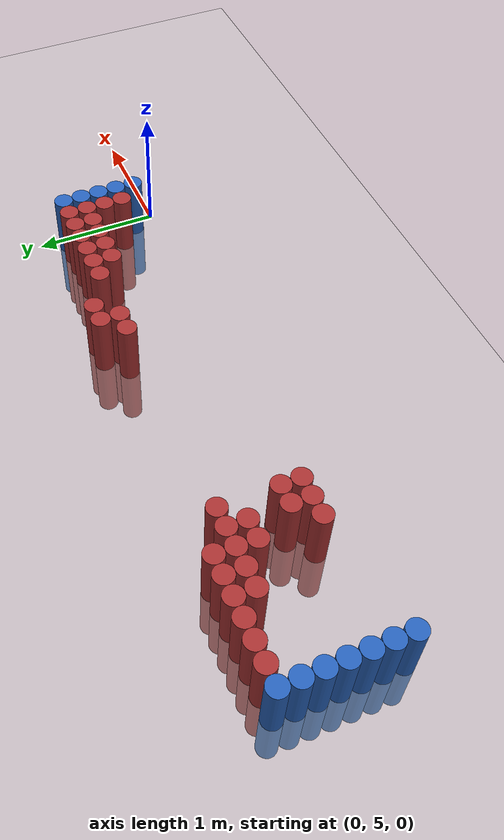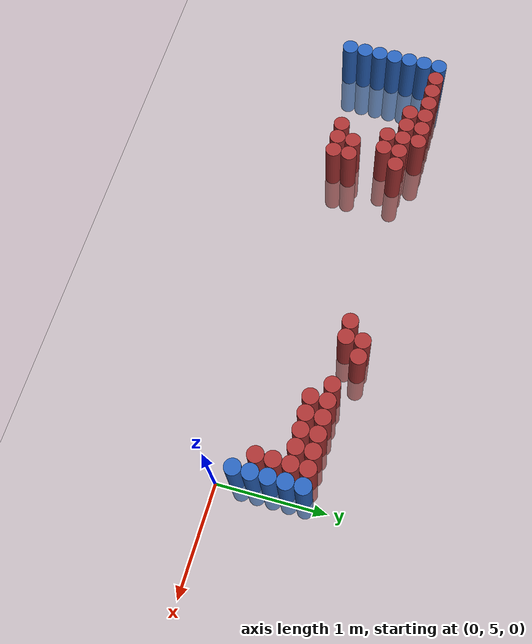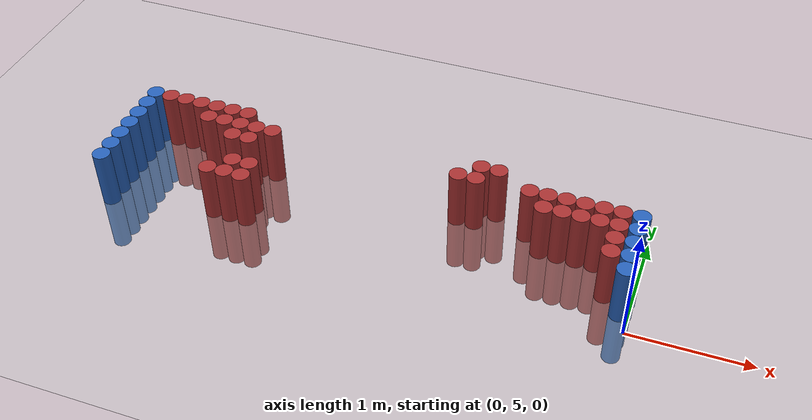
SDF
<sdf version="1.6">
 <world name="default">
  <model name="ground_plane">
   <static>1</static>
   <link name="link">
    <collision name="collision">
     <geometry><plane><normal>0 0 1</normal><size>100 100</size></plane></geometry>
     <surface><friction><ode><mu>100</mu><mu2>50</mu2></ode></friction></surface>
    </collision>
    <visual name="visual">
     <cast_shadows>0</cast_shadows>
     <geometry><plane><normal>0 0 1</normal><size>100 100</size></plane></geometry>
     <material>
      <script><uri>file://media/materials/scripts/gazebo.material</uri><name>Gazebo/Grey</name></script>
     </material>
    </visual>
   </link>
  </model>
  <model name="unit_cylinder_95">
   <static>1</static>
   <pose>-4.425000 5.025000 0.000000 0.000000 0.000000 0.000000</pose>
   <link name="link">
    <inertial>
     <mass>1</mass>
     <inertia><ixx>0.145833</ixx><ixy>0</ixy><ixz>0</ixz><iyy>0.145833</iyy><iyz>0</iyz><izz>0.125</izz></inertia>
    </inertial>
    <collision name="collision">
     <geometry><cylinder><radius>0.075000</radius><length>1</length></cylinder></geometry>
    </collision>
    <visual name="visual">
     <geometry><cylinder><radius>0.075000</radius><length>1</length></cylinder></geometry>
     <material>
      <ambient>0.152000 0.379000 0.720000 1</ambient>
      <diffuse>0.152000 0.379000 0.720000 1</diffuse>
     </material>
     <material>
      <script><name>Gazebo/Grey</name><uri>file://media/materials/scripts/gazebo.material</uri></script>
     </material>
    </visual>
   </link>
  </model>
  <model name="unit_cylinder_96">
   <static>1</static>
   <pose>-4.425000 5.175000 0.000000 0.000000 0.000000 0.000000</pose>
   <link name="link">
    <inertial>
     <mass>1</mass>
     <inertia><ixx>0.145833</ixx><ixy>0</ixy><ixz>0</ixz><iyy>0.145833</iyy><iyz>0</iyz><izz>0.125</izz></inertia>
    </inertial>
    <collision name="collision">
     <geometry><cylinder><radius>0.075000</radius><length>1</length></cylinder></geometry>
    </collision>
    <visual name="visual">
     <geometry><cylinder><radius>0.075000</radius><length>1</length></cylinder></geometry>
     <material>
      <ambient>0.152000 0.379000 0.720000 1</ambient>
      <diffuse>0.152000 0.379000 0.720000 1</diffuse>
     </material>
     <material>
      <script><name>Gazebo/Grey</name><uri>file://media/materials/scripts/gazebo.material</uri></script>
     </material>
    </visual>
   </link>
  </model>
  <model name="unit_cylinder_97">
   <static>1</static>
   <pose>-4.425000 5.325000 0.000000 0.000000 0.000000 0.000000</pose>
   <link name="link">
    <inertial>
     <mass>1</mass>
     <inertia><ixx>0.145833</ixx><ixy>0</ixy><ixz>0</ixz><iyy>0.145833</iyy><iyz>0</iyz><izz>0.125</izz></inertia>
    </inertial>
    <collision name="collision">
     <geometry><cylinder><radius>0.075000</radius><length>1</length></cylinder></geometry>
    </collision>
    <visual name="visual">
     <geometry><cylinder><radius>0.075000</radius><length>1</length></cylinder></geometry>
     <material>
      <ambient>0.152000 0.379000 0.720000 1</ambient>
      <diffuse>0.152000 0.379000 0.720000 1</diffuse>
     </material>
     <material>
      <script><name>Gazebo/Grey</name><uri>file://media/materials/scripts/gazebo.material</uri></script>
     </material>
    </visual>
   </link>
  </model>
  <model name="unit_cylinder_98">
   <static>1</static>
   <pose>-4.425000 5.475000 0.000000 0.000000 0.000000 0.000000</pose>
   <link name="link">
    <inertial>
     <mass>1</mass>
     <inertia><ixx>0.145833</ixx><ixy>0</ixy><ixz>0</ixz><iyy>0.145833</iyy><iyz>0</iyz><izz>0.125</izz></inertia>
    </inertial>
    <collision name="collision">
     <geometry><cylinder><radius>0.075000</radius><length>1</length></cylinder></geometry>
    </collision>
    <visual name="visual">
     <geometry><cylinder><radius>0.075000</radius><length>1</length></cylinder></geometry>
     <material>
      <ambient>0.152000 0.379000 0.720000 1</ambient>
      <diffuse>0.152000 0.379000 0.720000 1</diffuse>
     </material>
     <material>
      <script><name>Gazebo/Grey</name><uri>file://media/materials/scripts/gazebo.material</uri></script>
     </material>
    </visual>
   </link>
  </model>
  <model name="unit_cylinder_99">
   <static>1</static>
   <pose>-4.425000 5.625000 0.000000 0.000000 0.000000 0.000000</pose>
   <link name="link">
    <inertial>
     <mass>1</mass>
     <inertia><ixx>0.145833</ixx><ixy>0</ixy><ixz>0</ixz><iyy>0.145833</iyy><iyz>0</iyz><izz>0.125</izz></inertia>
    </inertial>
    <collision name="collision">
     <geometry><cylinder><radius>0.075000</radius><length>1</length></cylinder></geometry>
    </collision>
    <visual name="visual">
     <geometry><cylinder><radius>0.075000</radius><length>1</length></cylinder></geometry>
     <material>
      <ambient>0.152000 0.379000 0.720000 1</ambient>
      <diffuse>0.152000 0.379000 0.720000 1</diffuse>
     </material>
     <material>
      <script><name>Gazebo/Grey</name><uri>file://media/materials/scripts/gazebo.material</uri></script>
     </material>
    </visual>
   </link>
  </model>
  <model name="unit_cylinder_100">
   <static>1</static>
   <pose>-4.425000 5.775000 0.000000 0.000000 0.000000 0.000000</pose>
   <link name="link">
    <inertial>
     <mass>1</mass>
     <inertia><ixx>0.145833</ixx><ixy>0</ixy><ixz>0</ixz><iyy>0.145833</iyy><iyz>0</iyz><izz>0.125</izz></inertia>
    </inertial>
    <collision name="collision">
     <geometry><cylinder><radius>0.075000</radius><length>1</length></cylinder></geometry>
    </collision>
    <visual name="visual">
     <geometry><cylinder><radius>0.075000</radius><length>1</length></cylinder></geometry>
     <material>
      <ambient>0.152000 0.379000 0.720000 1</ambient>
      <diffuse>0.152000 0.379000 0.720000 1</diffuse>
     </material>
     <material>
      <script><name>Gazebo/Grey</name><uri>file://media/materials/scripts/gazebo.material</uri></script>
     </material>
    </visual>
   </link>
  </model>
  <model name="unit_cylinder_101">
   <static>1</static>
   <pose>-4.425000 5.925000 0.000000 0.000000 0.000000 0.000000</pose>
   <link name="link">
    <inertial>
     <mass>1</mass>
     <inertia><ixx>0.145833</ixx><ixy>0</ixy><ixz>0</ixz><iyy>0.145833</iyy><iyz>0</iyz><izz>0.125</izz></inertia>
    </inertial>
    <collision name="collision">
     <geometry><cylinder><radius>0.075000</radius><length>1</length></cylinder></geometry>
    </collision>
    <visual name="visual">
     <geometry><cylinder><radius>0.075000</radius><length>1</length></cylinder></geometry>
     <material>
      <ambient>0.152000 0.379000 0.720000 1</ambient>
      <diffuse>0.152000 0.379000 0.720000 1</diffuse>
     </material>
     <material>
      <script><name>Gazebo/Grey</name><uri>file://media/materials/scripts/gazebo.material</uri></script>
     </material>
    </visual>
   </link>
  </model>
  <model name="unit_cylinder_126">
   <static>1</static>
   <pose>-4.275000 5.925000 0.000000 0.000000 0.000000 0.000000</pose>
   <link name="link">
    <inertial>
     <mass>1</mass>
     <inertia><ixx>0.145833</ixx><ixy>0</ixy><ixz>0</ixz><iyy>0.145833</iyy><iyz>0</iyz><izz>0.125</izz></inertia>
    </inertial>
    <collision name="collision">
     <geometry><cylinder><radius>0.075000</radius><length>1</length></cylinder></geometry>
    </collision>
    <visual name="visual">
     <geometry><cylinder><radius>0.075000</radius><length>1</length></cylinder></geometry>
     <material>
      <ambient>0.648000 0.192000 0.192000 1</ambient>
      <diffuse>0.648000 0.192000 0.192000 1</diffuse>
     </material>
     <material>
      <script><name>Gazebo/Grey</name><uri>file://media/materials/scripts/gazebo.material</uri></script>
     </material>
    </visual>
   </link>
  </model>
  <model name="unit_cylinder_140">
   <static>1</static>
   <pose>-4.125000 5.925000 0.000000 0.000000 0.000000 0.000000</pose>
   <link name="link">
    <inertial>
     <mass>1</mass>
     <inertia><ixx>0.145833</ixx><ixy>0</ixy><ixz>0</ixz><iyy>0.145833</iyy><iyz>0</iyz><izz>0.125</izz></inertia>
    </inertial>
    <collision name="collision">
     <geometry><cylinder><radius>0.075000</radius><length>1</length></cylinder></geometry>
    </collision>
    <visual name="visual">
     <geometry><cylinder><radius>0.075000</radius><length>1</length></cylinder></geometry>
     <material>
      <ambient>0.648000 0.192000 0.192000 1</ambient>
      <diffuse>0.648000 0.192000 0.192000 1</diffuse>
     </material>
     <material>
      <script><name>Gazebo/Grey</name><uri>file://media/materials/scripts/gazebo.material</uri></script>
     </material>
    </visual>
   </link>
  </model>
  <model name="unit_cylinder_150">
   <static>1</static>
   <pose>-3.975000 5.925000 0.000000 0.000000 0.000000 0.000000</pose>
   <link name="link">
    <inertial>
     <mass>1</mass>
     <inertia><ixx>0.145833</ixx><ixy>0</ixy><ixz>0</ixz><iyy>0.145833</iyy><iyz>0</iyz><izz>0.125</izz></inertia>
    </inertial>
    <collision name="collision">
     <geometry><cylinder><radius>0.075000</radius><length>1</length></cylinder></geometry>
    </collision>
    <visual name="visual">
     <geometry><cylinder><radius>0.075000</radius><length>1</length></cylinder></geometry>
     <material>
      <ambient>0.648000 0.192000 0.192000 1</ambient>
      <diffuse>0.648000 0.192000 0.192000 1</diffuse>
     </material>
     <material>
      <script><name>Gazebo/Grey</name><uri>file://media/materials/scripts/gazebo.material</uri></script>
     </material>
    </visual>
   </link>
  </model>
  <model name="unit_cylinder_155">
   <static>1</static>
   <pose>-3.825000 5.775000 0.000000 0.000000 0.000000 0.000000</pose>
   <link name="link">
    <inertial>
     <mass>1</mass>
     <inertia><ixx>0.145833</ixx><ixy>0</ixy><ixz>0</ixz><iyy>0.145833</iyy><iyz>0</iyz><izz>0.125</izz></inertia>
    </inertial>
    <collision name="collision">
     <geometry><cylinder><radius>0.075000</radius><length>1</length></cylinder></geometry>
    </collision>
    <visual name="visual">
     <geometry><cylinder><radius>0.075000</radius><length>1</length></cylinder></geometry>
     <material>
      <ambient>0.648000 0.192000 0.192000 1</ambient>
      <diffuse>0.648000 0.192000 0.192000 1</diffuse>
     </material>
     <material>
      <script><name>Gazebo/Grey</name><uri>file://media/materials/scripts/gazebo.material</uri></script>
     </material>
    </visual>
   </link>
  </model>
  <model name="unit_cylinder_156">
   <static>1</static>
   <pose>-3.825000 5.925000 0.000000 0.000000 0.000000 0.000000</pose>
   <link name="link">
    <inertial>
     <mass>1</mass>
     <inertia><ixx>0.145833</ixx><ixy>0</ixy><ixz>0</ixz><iyy>0.145833</iyy><iyz>0</iyz><izz>0.125</izz></inertia>
    </inertial>
    <collision name="collision">
     <geometry><cylinder><radius>0.075000</radius><length>1</length></cylinder></geometry>
    </collision>
    <visual name="visual">
     <geometry><cylinder><radius>0.075000</radius><length>1</length></cylinder></geometry>
     <material>
      <ambient>0.648000 0.192000 0.192000 1</ambient>
      <diffuse>0.648000 0.192000 0.192000 1</diffuse>
     </material>
     <material>
      <script><name>Gazebo/Grey</name><uri>file://media/materials/scripts/gazebo.material</uri></script>
     </material>
    </visual>
   </link>
  </model>
  <model name="unit_cylinder_164">
   <static>1</static>
   <pose>-3.675000 5.775000 0.000000 0.000000 0.000000 0.000000</pose>
   <link name="link">
    <inertial>
     <mass>1</mass>
     <inertia><ixx>0.145833</ixx><ixy>0</ixy><ixz>0</ixz><iyy>0.145833</iyy><iyz>0</iyz><izz>0.125</izz></inertia>
    </inertial>
    <collision name="collision">
     <geometry><cylinder><radius>0.075000</radius><length>1</length></cylinder></geometry>
    </collision>
    <visual name="visual">
     <geometry><cylinder><radius>0.075000</radius><length>1</length></cylinder></geometry>
     <material>
      <ambient>0.648000 0.192000 0.192000 1</ambient>
      <diffuse>0.648000 0.192000 0.192000 1</diffuse>
     </material>
     <material>
      <script><name>Gazebo/Grey</name><uri>file://media/materials/scripts/gazebo.material</uri></script>
     </material>
    </visual>
   </link>
  </model>
  <model name="unit_cylinder_165">
   <static>1</static>
   <pose>-3.675000 5.925000 0.000000 0.000000 0.000000 0.000000</pose>
   <link name="link">
    <inertial>
     <mass>1</mass>
     <inertia><ixx>0.145833</ixx><ixy>0</ixy><ixz>0</ixz><iyy>0.145833</iyy><iyz>0</iyz><izz>0.125</izz></inertia>
    </inertial>
    <collision name="collision">
     <geometry><cylinder><radius>0.075000</radius><length>1</length></cylinder></geometry>
    </collision>
    <visual name="visual">
     <geometry><cylinder><radius>0.075000</radius><length>1</length></cylinder></geometry>
     <material>
      <ambient>0.648000 0.192000 0.192000 1</ambient>
      <diffuse>0.648000 0.192000 0.192000 1</diffuse>
     </material>
     <material>
      <script><name>Gazebo/Grey</name><uri>file://media/materials/scripts/gazebo.material</uri></script>
     </material>
    </visual>
   </link>
  </model>
  <model name="unit_cylinder_179">
   <static>1</static>
   <pose>-3.525000 5.175000 0.000000 0.000000 0.000000 0.000000</pose>
   <link name="link">
    <inertial>
     <mass>1</mass>
     <inertia><ixx>0.145833</ixx><ixy>0</ixy><ixz>0</ixz><iyy>0.145833</iyy><iyz>0</iyz><izz>0.125</izz></inertia>
    </inertial>
    <collision name="collision">
     <geometry><cylinder><radius>0.075000</radius><length>1</length></cylinder></geometry>
    </collision>
    <visual name="visual">
     <geometry><cylinder><radius>0.075000</radius><length>1</length></cylinder></geometry>
     <material>
      <ambient>0.648000 0.192000 0.192000 1</ambient>
      <diffuse>0.648000 0.192000 0.192000 1</diffuse>
     </material>
     <material>
      <script><name>Gazebo/Grey</name><uri>file://media/materials/scripts/gazebo.material</uri></script>
     </material>
    </visual>
   </link>
  </model>
  <model name="unit_cylinder_180">
   <static>1</static>
   <pose>-3.525000 5.625000 0.000000 0.000000 0.000000 0.000000</pose>
   <link name="link">
    <inertial>
     <mass>1</mass>
     <inertia><ixx>0.145833</ixx><ixy>0</ixy><ixz>0</ixz><iyy>0.145833</iyy><iyz>0</iyz><izz>0.125</izz></inertia>
    </inertial>
    <collision name="collision">
     <geometry><cylinder><radius>0.075000</radius><length>1</length></cylinder></geometry>
    </collision>
    <visual name="visual">
     <geometry><cylinder><radius>0.075000</radius><length>1</length></cylinder></geometry>
     <material>
      <ambient>0.648000 0.192000 0.192000 1</ambient>
      <diffuse>0.648000 0.192000 0.192000 1</diffuse>
     </material>
     <material>
      <script><name>Gazebo/Grey</name><uri>file://media/materials/scripts/gazebo.material</uri></script>
     </material>
    </visual>
   </link>
  </model>
  <model name="unit_cylinder_181">
   <static>1</static>
   <pose>-3.525000 5.775000 0.000000 0.000000 0.000000 0.000000</pose>
   <link name="link">
    <inertial>
     <mass>1</mass>
     <inertia><ixx>0.145833</ixx><ixy>0</ixy><ixz>0</ixz><iyy>0.145833</iyy><iyz>0</iyz><izz>0.125</izz></inertia>
    </inertial>
    <collision name="collision">
     <geometry><cylinder><radius>0.075000</radius><length>1</length></cylinder></geometry>
    </collision>
    <visual name="visual">
     <geometry><cylinder><radius>0.075000</radius><length>1</length></cylinder></geometry>
     <material>
      <ambient>0.648000 0.192000 0.192000 1</ambient>
      <diffuse>0.648000 0.192000 0.192000 1</diffuse>
     </material>
     <material>
      <script><name>Gazebo/Grey</name><uri>file://media/materials/scripts/gazebo.material</uri></script>
     </material>
    </visual>
   </link>
  </model>
  <model name="unit_cylinder_182">
   <static>1</static>
   <pose>-3.525000 5.925000 0.000000 0.000000 0.000000 0.000000</pose>
   <link name="link">
    <inertial>
     <mass>1</mass>
     <inertia><ixx>0.145833</ixx><ixy>0</ixy><ixz>0</ixz><iyy>0.145833</iyy><iyz>0</iyz><izz>0.125</izz></inertia>
    </inertial>
    <collision name="collision">
     <geometry><cylinder><radius>0.075000</radius><length>1</length></cylinder></geometry>
    </collision>
    <visual name="visual">
     <geometry><cylinder><radius>0.075000</radius><length>1</length></cylinder></geometry>
     <material>
      <ambient>0.648000 0.192000 0.192000 1</ambient>
      <diffuse>0.648000 0.192000 0.192000 1</diffuse>
     </material>
     <material>
      <script><name>Gazebo/Grey</name><uri>file://media/materials/scripts/gazebo.material</uri></script>
     </material>
    </visual>
   </link>
  </model>
  <model name="unit_cylinder_192">
   <static>1</static>
   <pose>-3.375000 5.175000 0.000000 0.000000 0.000000 0.000000</pose>
   <link name="link">
    <inertial>
     <mass>1</mass>
     <inertia><ixx>0.145833</ixx><ixy>0</ixy><ixz>0</ixz><iyy>0.145833</iyy><iyz>0</iyz><izz>0.125</izz></inertia>
    </inertial>
    <collision name="collision">
     <geometry><cylinder><radius>0.075000</radius><length>1</length></cylinder></geometry>
    </collision>
    <visual name="visual">
     <geometry><cylinder><radius>0.075000</radius><length>1</length></cylinder></geometry>
     <material>
      <ambient>0.648000 0.192000 0.192000 1</ambient>
      <diffuse>0.648000 0.192000 0.192000 1</diffuse>
     </material>
     <material>
      <script><name>Gazebo/Grey</name><uri>file://media/materials/scripts/gazebo.material</uri></script>
     </material>
    </visual>
   </link>
  </model>
  <model name="unit_cylinder_193">
   <static>1</static>
   <pose>-3.375000 5.325000 0.000000 0.000000 0.000000 0.000000</pose>
   <link name="link">
    <inertial>
     <mass>1</mass>
     <inertia><ixx>0.145833</ixx><ixy>0</ixy><ixz>0</ixz><iyy>0.145833</iyy><iyz>0</iyz><izz>0.125</izz></inertia>
    </inertial>
    <collision name="collision">
     <geometry><cylinder><radius>0.075000</radius><length>1</length></cylinder></geometry>
    </collision>
    <visual name="visual">
     <geometry><cylinder><radius>0.075000</radius><length>1</length></cylinder></geometry>
     <material>
      <ambient>0.648000 0.192000 0.192000 1</ambient>
      <diffuse>0.648000 0.192000 0.192000 1</diffuse>
     </material>
     <material>
      <script><name>Gazebo/Grey</name><uri>file://media/materials/scripts/gazebo.material</uri></script>
     </material>
    </visual>
   </link>
  </model>
  <model name="unit_cylinder_194">
   <static>1</static>
   <pose>-3.375000 5.625000 0.000000 0.000000 0.000000 0.000000</pose>
   <link name="link">
    <inertial>
     <mass>1</mass>
     <inertia><ixx>0.145833</ixx><ixy>0</ixy><ixz>0</ixz><iyy>0.145833</iyy><iyz>0</iyz><izz>0.125</izz></inertia>
    </inertial>
    <collision name="collision">
     <geometry><cylinder><radius>0.075000</radius><length>1</length></cylinder></geometry>
    </collision>
    <visual name="visual">
     <geometry><cylinder><radius>0.075000</radius><length>1</length></cylinder></geometry>
     <material>
      <ambient>0.648000 0.192000 0.192000 1</ambient>
      <diffuse>0.648000 0.192000 0.192000 1</diffuse>
     </material>
     <material>
      <script><name>Gazebo/Grey</name><uri>file://media/materials/scripts/gazebo.material</uri></script>
     </material>
    </visual>
   </link>
  </model>
  <model name="unit_cylinder_195">
   <static>1</static>
   <pose>-3.375000 5.775000 0.000000 0.000000 0.000000 0.000000</pose>
   <link name="link">
    <inertial>
     <mass>1</mass>
     <inertia><ixx>0.145833</ixx><ixy>0</ixy><ixz>0</ixz><iyy>0.145833</iyy><iyz>0</iyz><izz>0.125</izz></inertia>
    </inertial>
    <collision name="collision">
     <geometry><cylinder><radius>0.075000</radius><length>1</length></cylinder></geometry>
    </collision>
    <visual name="visual">
     <geometry><cylinder><radius>0.075000</radius><length>1</length></cylinder></geometry>
     <material>
      <ambient>0.648000 0.192000 0.192000 1</ambient>
      <diffuse>0.648000 0.192000 0.192000 1</diffuse>
     </material>
     <material>
      <script><name>Gazebo/Grey</name><uri>file://media/materials/scripts/gazebo.material</uri></script>
     </material>
    </visual>
   </link>
  </model>
  <model name="unit_cylinder_202">
   <static>1</static>
   <pose>-3.225000 5.175000 0.000000 0.000000 0.000000 0.000000</pose>
   <link name="link">
    <inertial>
     <mass>1</mass>
     <inertia><ixx>0.145833</ixx><ixy>0</ixy><ixz>0</ixz><iyy>0.145833</iyy><iyz>0</iyz><izz>0.125</izz></inertia>
    </inertial>
    <collision name="collision">
     <geometry><cylinder><radius>0.075000</radius><length>1</length></cylinder></geometry>
    </collision>
    <visual name="visual">
     <geometry><cylinder><radius>0.075000</radius><length>1</length></cylinder></geometry>
     <material>
      <ambient>0.648000 0.192000 0.192000 1</ambient>
      <diffuse>0.648000 0.192000 0.192000 1</diffuse>
     </material>
     <material>
      <script><name>Gazebo/Grey</name><uri>file://media/materials/scripts/gazebo.material</uri></script>
     </material>
    </visual>
   </link>
  </model>
  <model name="unit_cylinder_203">
   <static>1</static>
   <pose>-3.225000 5.325000 0.000000 0.000000 0.000000 0.000000</pose>
   <link name="link">
    <inertial>
     <mass>1</mass>
     <inertia><ixx>0.145833</ixx><ixy>0</ixy><ixz>0</ixz><iyy>0.145833</iyy><iyz>0</iyz><izz>0.125</izz></inertia>
    </inertial>
    <collision name="collision">
     <geometry><cylinder><radius>0.075000</radius><length>1</length></cylinder></geometry>
    </collision>
    <visual name="visual">
     <geometry><cylinder><radius>0.075000</radius><length>1</length></cylinder></geometry>
     <material>
      <ambient>0.648000 0.192000 0.192000 1</ambient>
      <diffuse>0.648000 0.192000 0.192000 1</diffuse>
     </material>
     <material>
      <script><name>Gazebo/Grey</name><uri>file://media/materials/scripts/gazebo.material</uri></script>
     </material>
    </visual>
   </link>
  </model>
  <model name="unit_cylinder_204">
   <static>1</static>
   <pose>-3.225000 5.775000 0.000000 0.000000 0.000000 0.000000</pose>
   <link name="link">
    <inertial>
     <mass>1</mass>
     <inertia><ixx>0.145833</ixx><ixy>0</ixy><ixz>0</ixz><iyy>0.145833</iyy><iyz>0</iyz><izz>0.125</izz></inertia>
    </inertial>
    <collision name="collision">
     <geometry><cylinder><radius>0.075000</radius><length>1</length></cylinder></geometry>
    </collision>
    <visual name="visual">
     <geometry><cylinder><radius>0.075000</radius><length>1</length></cylinder></geometry>
     <material>
      <ambient>0.648000 0.192000 0.192000 1</ambient>
      <diffuse>0.648000 0.192000 0.192000 1</diffuse>
     </material>
     <material>
      <script><name>Gazebo/Grey</name><uri>file://media/materials/scripts/gazebo.material</uri></script>
     </material>
    </visual>
   </link>
  </model>
  <model name="unit_cylinder_239">
   <static>1</static>
   <pose>-1.575000 5.775000 0.000000 0.000000 0.000000 0.000000</pose>
   <link name="link">
    <inertial>
     <mass>1</mass>
     <inertia><ixx>0.145833</ixx><ixy>0</ixy><ixz>0</ixz><iyy>0.145833</iyy><iyz>0</iyz><izz>0.125</izz></inertia>
    </inertial>
    <collision name="collision">
     <geometry><cylinder><radius>0.075000</radius><length>1</length></cylinder></geometry>
    </collision>
    <visual name="visual">
     <geometry><cylinder><radius>0.075000</radius><length>1</length></cylinder></geometry>
     <material>
      <ambient>0.648000 0.192000 0.192000 1</ambient>
      <diffuse>0.648000 0.192000 0.192000 1</diffuse>
     </material>
     <material>
      <script><name>Gazebo/Grey</name><uri>file://media/materials/scripts/gazebo.material</uri></script>
     </material>
    </visual>
   </link>
  </model>
  <model name="unit_cylinder_240">
   <static>1</static>
   <pose>-1.425000 5.775000 0.000000 0.000000 0.000000 0.000000</pose>
   <link name="link">
    <inertial>
     <mass>1</mass>
     <inertia><ixx>0.145833</ixx><ixy>0</ixy><ixz>0</ixz><iyy>0.145833</iyy><iyz>0</iyz><izz>0.125</izz></inertia>
    </inertial>
    <collision name="collision">
     <geometry><cylinder><radius>0.075000</radius><length>1</length></cylinder></geometry>
    </collision>
    <visual name="visual">
     <geometry><cylinder><radius>0.075000</radius><length>1</length></cylinder></geometry>
     <material>
      <ambient>0.648000 0.192000 0.192000 1</ambient>
      <diffuse>0.648000 0.192000 0.192000 1</diffuse>
     </material>
     <material>
      <script><name>Gazebo/Grey</name><uri>file://media/materials/scripts/gazebo.material</uri></script>
     </material>
    </visual>
   </link>
  </model>
  <model name="unit_cylinder_241">
   <static>1</static>
   <pose>-1.425000 5.925000 0.000000 0.000000 0.000000 0.000000</pose>
   <link name="link">
    <inertial>
     <mass>1</mass>
     <inertia><ixx>0.145833</ixx><ixy>0</ixy><ixz>0</ixz><iyy>0.145833</iyy><iyz>0</iyz><izz>0.125</izz></inertia>
    </inertial>
    <collision name="collision">
     <geometry><cylinder><radius>0.075000</radius><length>1</length></cylinder></geometry>
    </collision>
    <visual name="visual">
     <geometry><cylinder><radius>0.075000</radius><length>1</length></cylinder></geometry>
     <material>
      <ambient>0.648000 0.192000 0.192000 1</ambient>
      <diffuse>0.648000 0.192000 0.192000 1</diffuse>
     </material>
     <material>
      <script><name>Gazebo/Grey</name><uri>file://media/materials/scripts/gazebo.material</uri></script>
     </material>
    </visual>
   </link>
  </model>
  <model name="unit_cylinder_243">
   <static>1</static>
   <pose>-1.275000 5.925000 0.000000 0.000000 0.000000 0.000000</pose>
   <link name="link">
    <inertial>
     <mass>1</mass>
     <inertia><ixx>0.145833</ixx><ixy>0</ixy><ixz>0</ixz><iyy>0.145833</iyy><iyz>0</iyz><izz>0.125</izz></inertia>
    </inertial>
    <collision name="collision">
     <geometry><cylinder><radius>0.075000</radius><length>1</length></cylinder></geometry>
    </collision>
    <visual name="visual">
     <geometry><cylinder><radius>0.075000</radius><length>1</length></cylinder></geometry>
     <material>
      <ambient>0.648000 0.192000 0.192000 1</ambient>
      <diffuse>0.648000 0.192000 0.192000 1</diffuse>
     </material>
     <material>
      <script><name>Gazebo/Grey</name><uri>file://media/materials/scripts/gazebo.material</uri></script>
     </material>
    </visual>
   </link>
  </model>
  <model name="unit_cylinder_249">
   <static>1</static>
   <pose>-0.975000 5.775000 0.000000 0.000000 0.000000 0.000000</pose>
   <link name="link">
    <inertial>
     <mass>1</mass>
     <inertia><ixx>0.145833</ixx><ixy>0</ixy><ixz>0</ixz><iyy>0.145833</iyy><iyz>0</iyz><izz>0.125</izz></inertia>
    </inertial>
    <collision name="collision">
     <geometry><cylinder><radius>0.075000</radius><length>1</length></cylinder></geometry>
    </collision>
    <visual name="visual">
     <geometry><cylinder><radius>0.075000</radius><length>1</length></cylinder></geometry>
     <material>
      <ambient>0.648000 0.192000 0.192000 1</ambient>
      <diffuse>0.648000 0.192000 0.192000 1</diffuse>
     </material>
     <material>
      <script><name>Gazebo/Grey</name><uri>file://media/materials/scripts/gazebo.material</uri></script>
     </material>
    </visual>
   </link>
  </model>
  <model name="unit_cylinder_255">
   <static>1</static>
   <pose>-0.825000 5.625000 0.000000 0.000000 0.000000 0.000000</pose>
   <link name="link">
    <inertial>
     <mass>1</mass>
     <inertia><ixx>0.145833</ixx><ixy>0</ixy><ixz>0</ixz><iyy>0.145833</iyy><iyz>0</iyz><izz>0.125</izz></inertia>
    </inertial>
    <collision name="collision">
     <geometry><cylinder><radius>0.075000</radius><length>1</length></cylinder></geometry>
    </collision>
    <visual name="visual">
     <geometry><cylinder><radius>0.075000</radius><length>1</length></cylinder></geometry>
     <material>
      <ambient>0.648000 0.192000 0.192000 1</ambient>
      <diffuse>0.648000 0.192000 0.192000 1</diffuse>
     </material>
     <material>
      <script><name>Gazebo/Grey</name><uri>file://media/materials/scripts/gazebo.material</uri></script>
     </material>
    </visual>
   </link>
  </model>
  <model name="unit_cylinder_256">
   <static>1</static>
   <pose>-0.825000 5.775000 0.000000 0.000000 0.000000 0.000000</pose>
   <link name="link">
    <inertial>
     <mass>1</mass>
     <inertia><ixx>0.145833</ixx><ixy>0</ixy><ixz>0</ixz><iyy>0.145833</iyy><iyz>0</iyz><izz>0.125</izz></inertia>
    </inertial>
    <collision name="collision">
     <geometry><cylinder><radius>0.075000</radius><length>1</length></cylinder></geometry>
    </collision>
    <visual name="visual">
     <geometry><cylinder><radius>0.075000</radius><length>1</length></cylinder></geometry>
     <material>
      <ambient>0.648000 0.192000 0.192000 1</ambient>
      <diffuse>0.648000 0.192000 0.192000 1</diffuse>
     </material>
     <material>
      <script><name>Gazebo/Grey</name><uri>file://media/materials/scripts/gazebo.material</uri></script>
     </material>
    </visual>
   </link>
  </model>
  <model name="unit_cylinder_265">
   <static>1</static>
   <pose>-0.675000 5.625000 0.000000 0.000000 0.000000 0.000000</pose>
   <link name="link">
    <inertial>
     <mass>1</mass>
     <inertia><ixx>0.145833</ixx><ixy>0</ixy><ixz>0</ixz><iyy>0.145833</iyy><iyz>0</iyz><izz>0.125</izz></inertia>
    </inertial>
    <collision name="collision">
     <geometry><cylinder><radius>0.075000</radius><length>1</length></cylinder></geometry>
    </collision>
    <visual name="visual">
     <geometry><cylinder><radius>0.075000</radius><length>1</length></cylinder></geometry>
     <material>
      <ambient>0.648000 0.192000 0.192000 1</ambient>
      <diffuse>0.648000 0.192000 0.192000 1</diffuse>
     </material>
     <material>
      <script><name>Gazebo/Grey</name><uri>file://media/materials/scripts/gazebo.material</uri></script>
     </material>
    </visual>
   </link>
  </model>
  <model name="unit_cylinder_266">
   <static>1</static>
   <pose>-0.675000 5.775000 0.000000 0.000000 0.000000 0.000000</pose>
   <link name="link">
    <inertial>
     <mass>1</mass>
     <inertia><ixx>0.145833</ixx><ixy>0</ixy><ixz>0</ixz><iyy>0.145833</iyy><iyz>0</iyz><izz>0.125</izz></inertia>
    </inertial>
    <collision name="collision">
     <geometry><cylinder><radius>0.075000</radius><length>1</length></cylinder></geometry>
    </collision>
    <visual name="visual">
     <geometry><cylinder><radius>0.075000</radius><length>1</length></cylinder></geometry>
     <material>
      <ambient>0.648000 0.192000 0.192000 1</ambient>
      <diffuse>0.648000 0.192000 0.192000 1</diffuse>
     </material>
     <material>
      <script><name>Gazebo/Grey</name><uri>file://media/materials/scripts/gazebo.material</uri></script>
     </material>
    </visual>
   </link>
  </model>
  <model name="unit_cylinder_275">
   <static>1</static>
   <pose>-0.525000 5.625000 0.000000 0.000000 0.000000 0.000000</pose>
   <link name="link">
    <inertial>
     <mass>1</mass>
     <inertia><ixx>0.145833</ixx><ixy>0</ixy><ixz>0</ixz><iyy>0.145833</iyy><iyz>0</iyz><izz>0.125</izz></inertia>
    </inertial>
    <collision name="collision">
     <geometry><cylinder><radius>0.075000</radius><length>1</length></cylinder></geometry>
    </collision>
    <visual name="visual">
     <geometry><cylinder><radius>0.075000</radius><length>1</length></cylinder></geometry>
     <material>
      <ambient>0.648000 0.192000 0.192000 1</ambient>
      <diffuse>0.648000 0.192000 0.192000 1</diffuse>
     </material>
     <material>
      <script><name>Gazebo/Grey</name><uri>file://media/materials/scripts/gazebo.material</uri></script>
     </material>
    </visual>
   </link>
  </model>
  <model name="unit_cylinder_276">
   <static>1</static>
   <pose>-0.525000 5.775000 0.000000 0.000000 0.000000 0.000000</pose>
   <link name="link">
    <inertial>
     <mass>1</mass>
     <inertia><ixx>0.145833</ixx><ixy>0</ixy><ixz>0</ixz><iyy>0.145833</iyy><iyz>0</iyz><izz>0.125</izz></inertia>
    </inertial>
    <collision name="collision">
     <geometry><cylinder><radius>0.075000</radius><length>1</length></cylinder></geometry>
    </collision>
    <visual name="visual">
     <geometry><cylinder><radius>0.075000</radius><length>1</length></cylinder></geometry>
     <material>
      <ambient>0.648000 0.192000 0.192000 1</ambient>
      <diffuse>0.648000 0.192000 0.192000 1</diffuse>
     </material>
     <material>
      <script><name>Gazebo/Grey</name><uri>file://media/materials/scripts/gazebo.material</uri></script>
     </material>
    </visual>
   </link>
  </model>
  <model name="unit_cylinder_282">
   <static>1</static>
   <pose>-0.375000 5.625000 0.000000 0.000000 0.000000 0.000000</pose>
   <link name="link">
    <inertial>
     <mass>1</mass>
     <inertia><ixx>0.145833</ixx><ixy>0</ixy><ixz>0</ixz><iyy>0.145833</iyy><iyz>0</iyz><izz>0.125</izz></inertia>
    </inertial>
    <collision name="collision">
     <geometry><cylinder><radius>0.075000</radius><length>1</length></cylinder></geometry>
    </collision>
    <visual name="visual">
     <geometry><cylinder><radius>0.075000</radius><length>1</length></cylinder></geometry>
     <material>
      <ambient>0.648000 0.192000 0.192000 1</ambient>
      <diffuse>0.648000 0.192000 0.192000 1</diffuse>
     </material>
     <material>
      <script><name>Gazebo/Grey</name><uri>file://media/materials/scripts/gazebo.material</uri></script>
     </material>
    </visual>
   </link>
  </model>
  <model name="unit_cylinder_283">
   <static>1</static>
   <pose>-0.375000 5.775000 0.000000 0.000000 0.000000 0.000000</pose>
   <link name="link">
    <inertial>
     <mass>1</mass>
     <inertia><ixx>0.145833</ixx><ixy>0</ixy><ixz>0</ixz><iyy>0.145833</iyy><iyz>0</iyz><izz>0.125</izz></inertia>
    </inertial>
    <collision name="collision">
     <geometry><cylinder><radius>0.075000</radius><length>1</length></cylinder></geometry>
    </collision>
    <visual name="visual">
     <geometry><cylinder><radius>0.075000</radius><length>1</length></cylinder></geometry>
     <material>
      <ambient>0.648000 0.192000 0.192000 1</ambient>
      <diffuse>0.648000 0.192000 0.192000 1</diffuse>
     </material>
     <material>
      <script><name>Gazebo/Grey</name><uri>file://media/materials/scripts/gazebo.material</uri></script>
     </material>
    </visual>
   </link>
  </model>
  <model name="unit_cylinder_290">
   <static>1</static>
   <pose>-0.225000 5.325000 0.000000 0.000000 0.000000 0.000000</pose>
   <link name="link">
    <inertial>
     <mass>1</mass>
     <inertia><ixx>0.145833</ixx><ixy>0</ixy><ixz>0</ixz><iyy>0.145833</iyy><iyz>0</iyz><izz>0.125</izz></inertia>
    </inertial>
    <collision name="collision">
     <geometry><cylinder><radius>0.075000</radius><length>1</length></cylinder></geometry>
    </collision>
    <visual name="visual">
     <geometry><cylinder><radius>0.075000</radius><length>1</length></cylinder></geometry>
     <material>
      <ambient>0.648000 0.192000 0.192000 1</ambient>
      <diffuse>0.648000 0.192000 0.192000 1</diffuse>
     </material>
     <material>
      <script><name>Gazebo/Grey</name><uri>file://media/materials/scripts/gazebo.material</uri></script>
     </material>
    </visual>
   </link>
  </model>
  <model name="unit_cylinder_291">
   <static>1</static>
   <pose>-0.225000 5.475000 0.000000 0.000000 0.000000 0.000000</pose>
   <link name="link">
    <inertial>
     <mass>1</mass>
     <inertia><ixx>0.145833</ixx><ixy>0</ixy><ixz>0</ixz><iyy>0.145833</iyy><iyz>0</iyz><izz>0.125</izz></inertia>
    </inertial>
    <collision name="collision">
     <geometry><cylinder><radius>0.075000</radius><length>1</length></cylinder></geometry>
    </collision>
    <visual name="visual">
     <geometry><cylinder><radius>0.075000</radius><length>1</length></cylinder></geometry>
     <material>
      <ambient>0.648000 0.192000 0.192000 1</ambient>
      <diffuse>0.648000 0.192000 0.192000 1</diffuse>
     </material>
     <material>
      <script><name>Gazebo/Grey</name><uri>file://media/materials/scripts/gazebo.material</uri></script>
     </material>
    </visual>
   </link>
  </model>
  <model name="unit_cylinder_292">
   <static>1</static>
   <pose>-0.225000 5.625000 0.000000 0.000000 0.000000 0.000000</pose>
   <link name="link">
    <inertial>
     <mass>1</mass>
     <inertia><ixx>0.145833</ixx><ixy>0</ixy><ixz>0</ixz><iyy>0.145833</iyy><iyz>0</iyz><izz>0.125</izz></inertia>
    </inertial>
    <collision name="collision">
     <geometry><cylinder><radius>0.075000</radius><length>1</length></cylinder></geometry>
    </collision>
    <visual name="visual">
     <geometry><cylinder><radius>0.075000</radius><length>1</length></cylinder></geometry>
     <material>
      <ambient>0.648000 0.192000 0.192000 1</ambient>
      <diffuse>0.648000 0.192000 0.192000 1</diffuse>
     </material>
     <material>
      <script><name>Gazebo/Grey</name><uri>file://media/materials/scripts/gazebo.material</uri></script>
     </material>
    </visual>
   </link>
  </model>
  <model name="unit_cylinder_293">
   <static>1</static>
   <pose>-0.225000 5.775000 0.000000 0.000000 0.000000 0.000000</pose>
   <link name="link">
    <inertial>
     <mass>1</mass>
     <inertia><ixx>0.145833</ixx><ixy>0</ixy><ixz>0</ixz><iyy>0.145833</iyy><iyz>0</iyz><izz>0.125</izz></inertia>
    </inertial>
    <collision name="collision">
     <geometry><cylinder><radius>0.075000</radius><length>1</length></cylinder></geometry>
    </collision>
    <visual name="visual">
     <geometry><cylinder><radius>0.075000</radius><length>1</length></cylinder></geometry>
     <material>
      <ambient>0.648000 0.192000 0.192000 1</ambient>
      <diffuse>0.648000 0.192000 0.192000 1</diffuse>
     </material>
     <material>
      <script><name>Gazebo/Grey</name><uri>file://media/materials/scripts/gazebo.material</uri></script>
     </material>
    </visual>
   </link>
  </model>
  <model name="unit_cylinder_303">
   <static>1</static>
   <pose>-0.075000 5.175000 0.000000 0.000000 0.000000 0.000000</pose>
   <link name="link">
    <inertial>
     <mass>1</mass>
     <inertia><ixx>0.145833</ixx><ixy>0</ixy><ixz>0</ixz><iyy>0.145833</iyy><iyz>0</iyz><izz>0.125</izz></inertia>
    </inertial>
    <collision name="collision">
     <geometry><cylinder><radius>0.075000</radius><length>1</length></cylinder></geometry>
    </collision>
    <visual name="visual">
     <geometry><cylinder><radius>0.075000</radius><length>1</length></cylinder></geometry>
     <material>
      <ambient>0.152000 0.379000 0.720000 1</ambient>
      <diffuse>0.152000 0.379000 0.720000 1</diffuse>
     </material>
     <material>
      <script><name>Gazebo/Grey</name><uri>file://media/materials/scripts/gazebo.material</uri></script>
     </material>
    </visual>
   </link>
  </model>
  <model name="unit_cylinder_304">
   <static>1</static>
   <pose>-0.075000 5.325000 0.000000 0.000000 0.000000 0.000000</pose>
   <link name="link">
    <inertial>
     <mass>1</mass>
     <inertia><ixx>0.145833</ixx><ixy>0</ixy><ixz>0</ixz><iyy>0.145833</iyy><iyz>0</iyz><izz>0.125</izz></inertia>
    </inertial>
    <collision name="collision">
     <geometry><cylinder><radius>0.075000</radius><length>1</length></cylinder></geometry>
    </collision>
    <visual name="visual">
     <geometry><cylinder><radius>0.075000</radius><length>1</length></cylinder></geometry>
     <material>
      <ambient>0.152000 0.379000 0.720000 1</ambient>
      <diffuse>0.152000 0.379000 0.720000 1</diffuse>
     </material>
     <material>
      <script><name>Gazebo/Grey</name><uri>file://media/materials/scripts/gazebo.material</uri></script>
     </material>
    </visual>
   </link>
  </model>
  <model name="unit_cylinder_305">
   <static>1</static>
   <pose>-0.075000 5.475000 0.000000 0.000000 0.000000 0.000000</pose>
   <link name="link">
    <inertial>
     <mass>1</mass>
     <inertia><ixx>0.145833</ixx><ixy>0</ixy><ixz>0</ixz><iyy>0.145833</iyy><iyz>0</iyz><izz>0.125</izz></inertia>
    </inertial>
    <collision name="collision">
     <geometry><cylinder><radius>0.075000</radius><length>1</length></cylinder></geometry>
    </collision>
    <visual name="visual">
     <geometry><cylinder><radius>0.075000</radius><length>1</length></cylinder></geometry>
     <material>
      <ambient>0.152000 0.379000 0.720000 1</ambient>
      <diffuse>0.152000 0.379000 0.720000 1</diffuse>
     </material>
     <material>
      <script><name>Gazebo/Grey</name><uri>file://media/materials/scripts/gazebo.material</uri></script>
     </material>
    </visual>
   </link>
  </model>
  <model name="unit_cylinder_306">
   <static>1</static>
   <pose>-0.075000 5.625000 0.000000 0.000000 0.000000 0.000000</pose>
   <link name="link">
    <inertial>
     <mass>1</mass>
     <inertia><ixx>0.145833</ixx><ixy>0</ixy><ixz>0</ixz><iyy>0.145833</iyy><iyz>0</iyz><izz>0.125</izz></inertia>
    </inertial>
    <collision name="collision">
     <geometry><cylinder><radius>0.075000</radius><length>1</length></cylinder></geometry>
    </collision>
    <visual name="visual">
     <geometry><cylinder><radius>0.075000</radius><length>1</length></cylinder></geometry>
     <material>
      <ambient>0.152000 0.379000 0.720000 1</ambient>
      <diffuse>0.152000 0.379000 0.720000 1</diffuse>
     </material>
     <material>
      <script><name>Gazebo/Grey</name><uri>file://media/materials/scripts/gazebo.material</uri></script>
     </material>
    </visual>
   </link>
  </model>
  <model name="unit_cylinder_307">
   <static>1</static>
   <pose>-0.075000 5.775000 0.000000 0.000000 0.000000 0.000000</pose>
   <link name="link">
    <inertial>
     <mass>1</mass>
     <inertia><ixx>0.145833</ixx><ixy>0</ixy><ixz>0</ixz><iyy>0.145833</iyy><iyz>0</iyz><izz>0.125</izz></inertia>
    </inertial>
    <collision name="collision">
     <geometry><cylinder><radius>0.075000</radius><length>1</length></cylinder></geometry>
    </collision>
    <visual name="visual">
     <geometry><cylinder><radius>0.075000</radius><length>1</length></cylinder></geometry>
     <material>
      <ambient>0.152000 0.379000 0.720000 1</ambient>
      <diffuse>0.152000 0.379000 0.720000 1</diffuse>
     </material>
     <material>
      <script><name>Gazebo/Grey</name><uri>file://media/materials/scripts/gazebo.material</uri></script>
     </material>
    </visual>
   </link>
  </model>
 </world>
</sdf>
